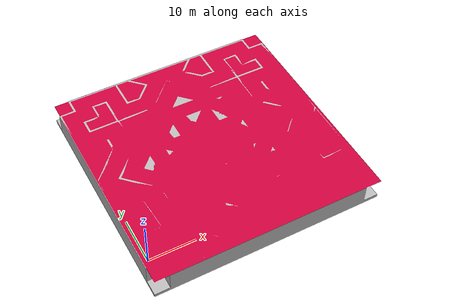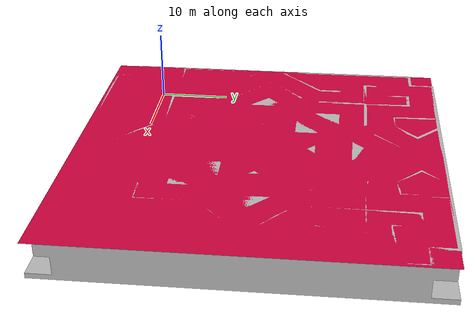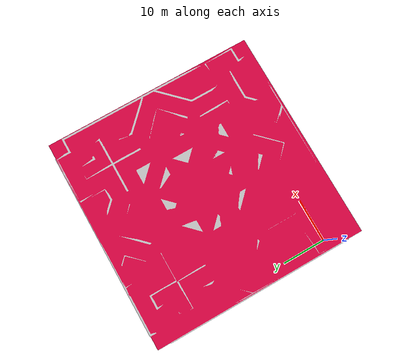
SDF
<?xml version="1.0" ?>
<sdf version="1.5">
  <world name="default">
    <gui>
      <camera name="user_camera">
        <pose>-4.1 23.0 79.0 0 1.23 0</pose>
      </camera>
    </gui>
    <scene>
      <sky>
        <clouds>
          <speed>3</speed>
        </clouds>
      </sky>
      <ambient>0.75 0.75 0.75 1</ambient>
      <background>0.5 0.5 0.5 1</background>
      <shadows>0</shadows>
    </scene>

    <physics name='default_physics' default='0' type='ode'>
      <gravity>0 0 -9.8066</gravity>
      <ode>
        <solver>
          <type>quick</type>
          <iters>50</iters>
          <sor>1.3</sor>
          <use_dynamic_moi_rescaling>0</use_dynamic_moi_rescaling>
        </solver>
        <constraints>
          <cfm>0</cfm>
          <erp>0.2</erp>
          <contact_max_correcting_vel>100</contact_max_correcting_vel>
          <contact_surface_layer>0.001</contact_surface_layer>
        </constraints>
      </ode>
      <max_step_size>0.004</max_step_size>
      <real_time_factor>1</real_time_factor>
      <real_time_update_rate>250</real_time_update_rate>
      <magnetic_field>6.0e-6 2.3e-5 -4.2e-5</magnetic_field>
    </physics>

    <!-- A global light source -->
    <light type="directional" name="sun_1">
      <cast_shadows>false</cast_shadows>
      <pose>0 0 500 0 -0.9 0</pose>
      <diffuse>0.95 0.95 0.95 1</diffuse>
      <specular>0.4 0.4 0.4 1</specular>
      <attenuation>
        <range>2000</range>
        <constant>1.0</constant>
        <linear>0.0</linear>
        <quadratic>0.0</quadratic>
      </attenuation>
      <direction>-0.1 0.05 -1.0</direction>
    </light>
    <light type="directional" name="sun_2">
      <cast_shadows>false</cast_shadows>
      <pose>0 0 500 0 0.9 0</pose>
      <diffuse>0.95 0.95 0.95 1</diffuse>
      <specular>0.4 0.4 0.4 1</specular>
      <attenuation>
        <range>2000</range>
        <constant>1.0</constant>
        <linear>0.0</linear>
        <quadratic>0.0</quadratic>
      </attenuation>
      <direction>0.1 -0.05 -1.0</direction>
    </light>

    <include>
      <pose>-2 -7 -1 0 0 0</pose>
      <uri>model://octamaze</uri>
    </include>

  </world>
</sdf>

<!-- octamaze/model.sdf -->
<sdf version="1.6">
  <model name="octamaze">
    <static>true</static>
    <link name="link">
      <pose>0 0 0 0 0 0</pose>
      <collision name="collision">
        <geometry>
          <mesh>
            <scale>1.4 1.4 1.4</scale>
            <uri>model://octamaze/octamaze.dae</uri>
          </mesh>
        </geometry>
      </collision>
      <visual name="visual">
        <geometry>
          <mesh>
            <scale>1.4 1.4 1.4</scale>
            <uri>model://octamaze/octamaze.dae</uri>
          </mesh>
        </geometry>
      </visual>
    </link>
  </model>
</sdf>
